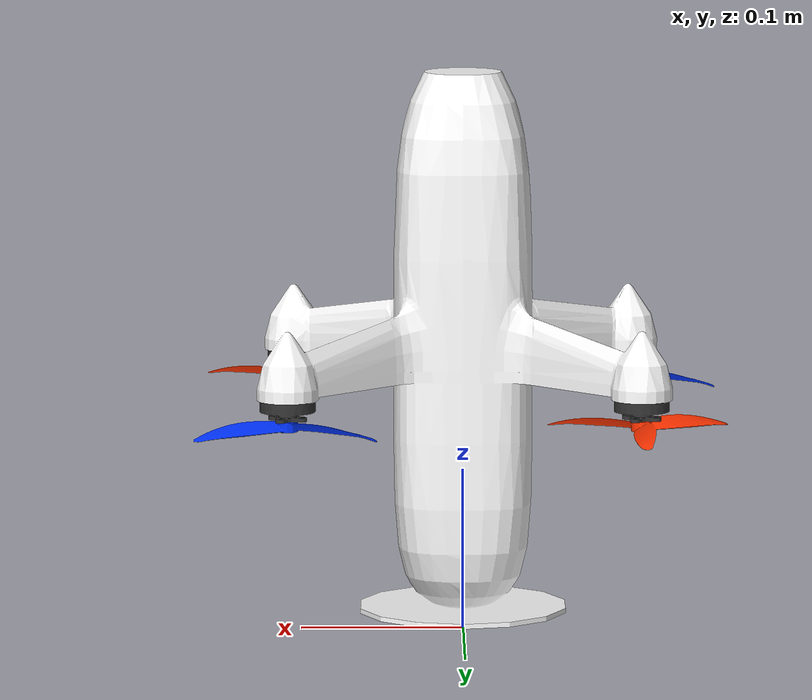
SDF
<?xml version="1.0" encoding="UTF-8"?>
<sdf version='1.9'>
  <model name='mosquito'>
    <pose>0 0 .167 0 0 0</pose>
    <self_collide>false</self_collide>
    <static>false</static>
    <link name="base_link">
      <inertial>
        <mass>1.0</mass>
        <inertia>
          <ixx>0.01166666666666667</ixx>
          <ixy>0</ixy>
          <ixz>0</ixz>
          <iyy>0.01166666666666667</iyy>
          <iyz>0</iyz>
          <izz>0.02000000000000001</izz>
        </inertia>
      </inertial>
      <gravity>true</gravity>
      <velocity_decay/>
      <visual name="base_link_visual">
        <pose>0 0 0 0 0 3.141592654</pose>
        <geometry>
          <mesh>
            <scale>0.001 0.001 0.001</scale>
            <uri>model://mosquito/meshes/body_x4.stl</uri>
          </mesh>
        </geometry>
        <material>
          <ambient>0.5 0.5 0.5 1</ambient>
          <diffuse>1.0 1.0 1.0 1</diffuse>
          <specular>1.0 1.0 0.5 1</specular>
        </material>
      </visual>
      <visual name="f90_motor_base_0">
        <pose>0.106 0.106 -0.0195 1.5708 0 -.45</pose>
        <geometry>
          <mesh>
            <scale>0.001 0.001 0.001</scale>
            <uri>model://mosquito/meshes/motor_f90.stl</uri>
          </mesh>
        </geometry>
        <material>
          <ambient>0.2 0.2 0.2 1</ambient>
          <diffuse>0.2 0.2 0.2 1</diffuse>
          <specular>0.5 0.5 0.5 1</specular>
        </material>
      </visual>
     <visual name="f90_motor_base_1">
        <pose>-0.106 0.106 -0.0195 1.5708 0 -.45</pose>
        <geometry>
          <mesh>
            <scale>0.001 0.001 0.001</scale>
            <uri>model://mosquito/meshes/motor_f90.stl</uri>
          </mesh>
        </geometry>
        <material>
          <ambient>0.2 0.2 0.2 1</ambient>
          <diffuse>0.2 0.2 0.2 1</diffuse>
          <specular>0.5 0.5 0.5 1</specular>
        </material>
      </visual>
      <visual name="f90_motor_base_2">
        <pose>0.106 -0.106 -0.0195 1.5708 0 -.45</pose>
        <geometry>
          <mesh>
            <scale>0.001 0.001 0.001</scale>
            <uri>model://mosquito/meshes/motor_f90.stl</uri>
          </mesh>
        </geometry>
        <material>
          <ambient>0.2 0.2 0.2 1</ambient>
          <diffuse>0.2 0.2 0.2 1</diffuse>
          <specular>0.5 0.5 0.5 1</specular>
        </material>
      </visual>
      <visual name="f90_motor_base_3">
        <pose>-0.106 -0.106 -0.0195 1.5708 0 -.45</pose>
        <geometry>
          <mesh>
            <scale>0.001 0.001 0.001</scale>
            <uri>model://mosquito/meshes/motor_f90.stl</uri>
          </mesh>
        </geometry>
        <material>
          <ambient>0.2 0.2 0.2 1</ambient>
          <diffuse>0.2 0.2 0.2 1</diffuse>
          <specular>0.5 0.5 0.5 1</specular>
        </material>
      </visual>
      <collision name="base_link_collision_0">
        <pose>0 0 0 0 0 0</pose>
        <geometry>
          <box>
            <size>0.086 0.086 0.336</size>
          </box>
        </geometry>
        <surface>
          <contact>
            <ode>
              <min_depth>0.001</min_depth>
              <max_vel>0</max_vel>
            </ode>
          </contact>
          <friction>
            <ode/>
          </friction>
        </surface>
      </collision>
      <collision name="base_link_collision_1">
        <pose>0.054 0.054 -0.0197 0 0 0.7853</pose>
        <geometry>
          <box>
            <size>0.011 0.002 0.005</size>
          </box>
        </geometry>
        <surface>
          <contact>
            <ode>
              <min_depth>0.001</min_depth>
              <max_vel>0</max_vel>
            </ode>
          </contact>
          <friction>
            <ode/>
          </friction>
        </surface>
      </collision>
      <collision name="base_link_collision_2">
        <pose>-0.054 0.054 -0.0197 0 0 -0.7853</pose>
        <geometry>
          <box>
            <size>0.011 0.002 0.05</size>
          </box>
        </geometry>
        <surface>
          <contact>
            <ode>
              <min_depth>0.001</min_depth>
              <max_vel>0</max_vel>
            </ode>
          </contact>
          <friction>
            <ode/>
          </friction>
        </surface>
      </collision>
      <collision name="base_link_collision_3">
        <pose>0.054 -0.054 -0.0197 0 0 -0.7853</pose>
        <geometry>
          <box>
            <size>0.011 0.002 0.05</size>
          </box>
        </geometry>
        <surface>
          <contact>
            <ode>
              <min_depth>0.001</min_depth>
              <max_vel>0</max_vel>
            </ode>
          </contact>
          <friction>
            <ode/>
          </friction>
        </surface>
      </collision>
      <collision name="base_link_collision_4">
        <pose>-0.054 -0.054 -0.0197 0 0 0.7853</pose>
        <geometry>
          <box>
            <size>0.011 0.002 0.05</size>
          </box>
        </geometry>
        <surface>
          <contact>
            <ode>
              <min_depth>0.001</min_depth>
              <max_vel>0</max_vel>
            </ode>
          </contact>
          <friction>
            <ode/>
          </friction>
        </surface>
      </collision>
      <sensor name="air_pressure_sensor" type="air_pressure">
        <always_on>1</always_on>
        <update_rate>50</update_rate>
        <air_pressure>
          <pressure>
            <noise type="gaussian">
              <mean>0</mean>
              <stddev>0.01</stddev>
            </noise>
          </pressure>
        </air_pressure>
      </sensor>
      <sensor name="imu_sensor" type="imu">
        <always_on>1</always_on>
        <update_rate>250</update_rate>
        <imu>
          <angular_velocity>
            <x>
              <noise type="gaussian">
                <mean>0</mean>
                <stddev>0.00018665</stddev>
                <dynamic_bias_stddev>3.8785e-05</dynamic_bias_stddev>
                <dynamic_bias_correlation_time>1000</dynamic_bias_correlation_time>
              </noise>
            </x>
            <y>
              <noise type="gaussian">
                <mean>0</mean>
                <stddev>0.00018665</stddev>
                <dynamic_bias_stddev>3.8785e-05</dynamic_bias_stddev>
                <dynamic_bias_correlation_time>1000</dynamic_bias_correlation_time>
              </noise>
            </y>
            <z>
              <noise type="gaussian">
                <mean>0</mean>
                <stddev>0.00018665</stddev>
                <dynamic_bias_stddev>3.8785e-05</dynamic_bias_stddev>
                <dynamic_bias_correlation_time>1000</dynamic_bias_correlation_time>
              </noise>
            </z>
          </angular_velocity>
          <linear_acceleration>
            <x>
              <noise type="gaussian">
                <mean>0</mean>
                <stddev>0.00186</stddev>
                <dynamic_bias_stddev>0.006</dynamic_bias_stddev>
                <dynamic_bias_correlation_time>300</dynamic_bias_correlation_time>
              </noise>
            </x>
            <y>
              <noise type="gaussian">
                <mean>0</mean>
                <stddev>0.00186</stddev>
                <dynamic_bias_stddev>0.006</dynamic_bias_stddev>
                <dynamic_bias_correlation_time>300</dynamic_bias_correlation_time>
              </noise>
            </y>
            <z>
              <noise type="gaussian">
                <mean>0</mean>
                <stddev>0.00186</stddev>
                <dynamic_bias_stddev>0.006</dynamic_bias_stddev>
                <dynamic_bias_correlation_time>300</dynamic_bias_correlation_time>
              </noise>
            </z>
          </linear_acceleration>
        </imu>
      </sensor>
      <sensor name="navsat_sensor" type="navsat">
        <always_on>1</always_on>
        <update_rate>30</update_rate>
      </sensor>
    </link>

    <link name="camera_link">
      <gravity>true</gravity>
      <self_collide>false</self_collide>
      <pose>0.0 0.0 0.1675 0 0 0</pose>
      <inertial>
        <mass>0.01</mass>
        <inertia>
          <ixx>2.3333e-06</ixx>
          <ixy>0</ixy>
          <ixz>0</ixz>
          <iyy>2.3333e-06</iyy>
          <iyz>0</iyz>
          <izz>2.0e-06</izz>
        </inertia>
      </inertial>
      <collision name="collision">
          <geometry>
            <cylinder>
              <radius>0.002</radius>
              <length>0.002</length>
            </cylinder>
          </geometry>
      </collision>
      <visual name="visual">
          <geometry>
            <cylinder>
              <radius>0.002</radius>
              <length>0.002</length>
            </cylinder>
          </geometry>
      </visual>
      <sensor name="camera" type="camera">
        <pose>0.0 0 0.1675 0 -1.5708 0</pose>
        <camera>
          <horizontal_fov>1.745</horizontal_fov>
          <image>
              <width>1280</width>
              <height>720</height>
          </image>
          <clip>
              <near>0.1</near>
              <far>1000</far>
          </clip>
        </camera>
        <always_on>1</always_on>
        <update_rate>30</update_rate>
        <visualize>true</visualize>
        <topic>camera</topic>
      </sensor>
    </link>

    <joint name="camera_joint" type="fixed">
      <parent>base_link</parent>
      <child>camera_link</child>
    </joint>

    <link name="rotor_0">
      <gravity>true</gravity>
      <self_collide>false</self_collide>
      <velocity_decay/>
      <pose>0.106 -0.106 -0.0198 0 0 0</pose>
      <inertial>
          <mass>0.016076923076923075</mass>
          <inertia>
            <ixx>3.8464910483993325e-07</ixx>
            <iyy>2.6115851691700804e-05</iyy>
            <izz>2.649858234714004e-05</izz>
          </inertia>
        </inertial>
      <visual name="rotor_0_visual">
        <pose>0 -0.08 0 -1.5708 0 0</pose>
        <geometry>
          <mesh>
            <scale>0.001 0.001 0.001</scale>
            <uri>model://mosquito/meshes/prop_5045_ccw.stl</uri>
          </mesh>
        </geometry>
        <material>
          <ambient>1.0 0.2 0.0 1</ambient>
          <diffuse>1.0 0.2 0.0 1</diffuse>
          <specular>1.0 1.0 1.0 1</specular>
          <emissive>0.5 0.5 0.1 1</emissive>
        </material>
      </visual>
      <collision name="rotor_0_collision">
        <pose>0 0 0 0 0 0 </pose>
        <geometry>
          <cylinder>
            <radius>0.013</radius>
            <length>0.002</length>
          </cylinder>
        </geometry>
        <surface>
          <contact>
            <ode>
              <min_depth>0.001</min_depth>
              <max_vel>0</max_vel>
            </ode>
          </contact>
          <friction>
            <ode/>
          </friction>
        </surface>
      </collision>
    </link>
    <joint name="rotor_0_joint" type="revolute">
      <parent>base_link</parent>
      <child>rotor_0</child>
      <axis>
        <xyz>0 0 1</xyz>
        <limit>
          <lower>-1e+16</lower>
          <upper>1e+16</upper>
        </limit>
        <dynamics>
          <spring_reference>0</spring_reference>
          <spring_stiffness>0</spring_stiffness>
        </dynamics>
      </axis>
    </joint>
    <link name="rotor_1">
      <gravity>true</gravity>
      <self_collide>false</self_collide>
      <velocity_decay/>
      <pose>-0.106 0.106 -0.0198 0 0 0</pose>
      <inertial>
        <mass>0.016076923076923075</mass>
        <inertia>
          <ixx>3.8464910483993325e-07</ixx>
          <iyy>2.6115851691700804e-05</iyy>
          <izz>2.649858234714004e-05</izz>
        </inertia>
      </inertial>
      <visual name="rotor_1_visual">
        <pose>0 -0.08 0 -1.5708 0 0</pose>
        <geometry>
          <mesh>
            <scale>0.001 0.001 0.001</scale>
            <uri>model://mosquito/meshes/prop_5045_ccw.stl</uri>
          </mesh>
        </geometry>
        <material>
          <ambient>1.0 0.2 0.0 1</ambient>
          <diffuse>1.0 0.2 0.0 1</diffuse>
          <specular>1.0 1.0 1.0 1</specular>
          <emissive>0.5 0.5 0.1 1</emissive>
        </material>
      </visual>
      <collision name="rotor_1_collision">
        <pose>0 0 0 0 0 0 </pose>
        <geometry>
          <cylinder>
            <radius>0.02</radius>
            <length>0.04</length>
          </cylinder>
        </geometry>
        <surface>
          <contact>
            <ode>
              <min_depth>0.001</min_depth>
              <max_vel>0</max_vel>
            </ode>
          </contact>
          <friction>
            <ode/>
          </friction>
        </surface>
      </collision>
    </link>
    <joint name="rotor_1_joint" type="revolute">
      <parent>base_link</parent>
      <child>rotor_1</child>
      <axis>
        <xyz>0 0 1</xyz>
        <limit>
          <lower>-1e+16</lower>
          <upper>1e+16</upper>
        </limit>
        <dynamics>
          <spring_reference>0</spring_reference>
          <spring_stiffness>0</spring_stiffness>
        </dynamics>
      </axis>
    </joint>
    <link name="rotor_2">
      <gravity>true</gravity>
      <self_collide>false</self_collide>
      <velocity_decay/>
      <pose>0.106 0.106 -0.0198 0 0 0</pose>
      <inertial>
          <mass>0.016076923076923075</mass>
          <inertia>
            <ixx>3.8464910483993325e-07</ixx>
            <iyy>2.6115851691700804e-05</iyy>
            <izz>2.649858234714004e-05</izz>
          </inertia>
        </inertial>
      <visual name="rotor_2_visual">
        <pose>0 0 0 -1.5708 0 0</pose>
        <geometry>
          <mesh>
            <scale>0.001 0.001 0.001</scale>
            <uri>model://mosquito/meshes/prop_5045_cw.stl</uri>
          </mesh>
        </geometry>
        <material>
          <ambient>0.0 0.2 1.0 1</ambient>
          <diffuse>0.0 0.2 1.0 1</diffuse>
          <specular>1.0 1.0 1.0 1</specular>
          <emissive>0.5 0.5 0.1 1</emissive>
        </material>
      </visual>
      <collision name="rotor_2_collision">
        <pose>0 0 0 0 0 0 </pose>
        <geometry>
          <cylinder>
            <radius>0.02</radius>
            <length>0.04</length>
          </cylinder>
        </geometry>
        <surface>
          <contact>
            <ode>
              <min_depth>0.001</min_depth>
              <max_vel>0</max_vel>
            </ode>
          </contact>
          <friction>
            <ode/>
          </friction>
        </surface>
      </collision>
    </link>
    <joint name="rotor_2_joint" type="revolute">
      <parent>base_link</parent>
      <child>rotor_2</child>
      <axis>
        <xyz>0 0 1</xyz>
        <limit>
          <lower>-1e+16</lower>
          <upper>1e+16</upper>
        </limit>
        <dynamics>
          <spring_reference>0</spring_reference>
          <spring_stiffness>0</spring_stiffness>
        </dynamics>
      </axis>
    </joint>
    <link name="rotor_3">
      <gravity>true</gravity>
      <self_collide>false</self_collide>
      <velocity_decay/>
      <pose>-0.106 -0.106 -0.0198 0 0 0</pose>
      <inertial>
          <mass>0.016076923076923075</mass>
          <inertia>
            <ixx>3.8464910483993325e-07</ixx>
            <iyy>2.6115851691700804e-05</iyy>
            <izz>2.649858234714004e-05</izz>
          </inertia>
        </inertial>
      <visual name="rotor_3_visual">
        <pose>0 0 0 -1.5708 0 0</pose>
        <geometry>
          <mesh>
            <scale>0.001 0.001 0.001</scale>
            <uri>model://mosquito/meshes/prop_5045_cw.stl</uri>
          </mesh>
        </geometry>
        <material>
          <ambient>0.0 0.2 1.0 1</ambient>
          <diffuse>0.0 0.2 1.0 1</diffuse>
          <specular>1.0 1.0 1.0 1</specular>
          <emissive>0.5 0.5 0.1 1</emissive>
        </material>
      </visual>
      <collision name="rotor_3_collision">
        <pose>0 0 0 0 0 0 </pose>
        <geometry>
          <cylinder>
            <radius>0.02</radius>
            <length>0.04</length>
          </cylinder>
        </geometry>
        <surface>
          <contact>
            <ode>
              <min_depth>0.001</min_depth>
              <max_vel>0</max_vel>
            </ode>
          </contact>
          <friction>
            <ode/>
          </friction>
        </surface>
      </collision>
    </link>
    <joint name="rotor_3_joint" type="revolute">
      <parent>base_link</parent>
      <child>rotor_3</child>
      <axis>
        <xyz>0 0 1</xyz>
        <limit>
          <lower>-1e+16</lower>
          <upper>1e+16</upper>
        </limit>
        <dynamics>
          <spring_reference>0</spring_reference>
          <spring_stiffness>0</spring_stiffness>
        </dynamics>
      </axis>
    </joint>

    <plugin filename="gz-sim-multicopter-motor-model-system" name="gz::sim::systems::MulticopterMotorModel">
      <jointName>rotor_0_joint</jointName>
      <linkName>rotor_0</linkName>
      <turningDirection>ccw</turningDirection>
      <timeConstantUp>0.0125</timeConstantUp> <!-- 加速更快 -->
      <timeConstantDown>0.025</timeConstantDown>
      <maxRotVelocity>1000.0</maxRotVelocity> <!-- 增加最大转速 -->
      <motorConstant>1.24858e-05</motorConstant> <!-- 增加升力系数 -->
      <momentConstant>0.016</momentConstant>
      <commandSubTopic>command/motor_speed</commandSubTopic>
      <motorNumber>0</motorNumber>
      <rotorDragCoefficient>8.06428e-05</rotorDragCoefficient>
      <rollingMomentCoefficient>1e-06</rollingMomentCoefficient>
      <rotorVelocitySlowdownSim>10</rotorVelocitySlowdownSim>
      <motorType>velocity</motorType>
    </plugin>
    <plugin filename="gz-sim-multicopter-motor-model-system" name="gz::sim::systems::MulticopterMotorModel">
      <jointName>rotor_1_joint</jointName>
      <linkName>rotor_1</linkName>
      <turningDirection>ccw</turningDirection>
      <timeConstantUp>0.0125</timeConstantUp>
      <timeConstantDown>0.025</timeConstantDown>
      <maxRotVelocity>1000.0</maxRotVelocity>
      <motorConstant>1.24858e-05</motorConstant>
      <momentConstant>0.016</momentConstant>
      <commandSubTopic>command/motor_speed</commandSubTopic>
      <motorNumber>1</motorNumber>
      <rotorDragCoefficient>8.06428e-05</rotorDragCoefficient>
      <rollingMomentCoefficient>1e-06</rollingMomentCoefficient>
      <rotorVelocitySlowdownSim>10</rotorVelocitySlowdownSim>
      <motorType>velocity</motorType>
    </plugin>
    <plugin filename="gz-sim-multicopter-motor-model-system" name="gz::sim::systems::MulticopterMotorModel">
      <jointName>rotor_2_joint</jointName>
      <linkName>rotor_2</linkName>
      <turningDirection>cw</turningDirection>
      <timeConstantUp>0.0125</timeConstantUp>
      <timeConstantDown>0.025</timeConstantDown>
      <maxRotVelocity>1000.0</maxRotVelocity>
      <motorConstant>1.24858e-05</motorConstant>
      <momentConstant>0.016</momentConstant>
      <commandSubTopic>command/motor_speed</commandSubTopic>
      <motorNumber>2</motorNumber>
      <rotorDragCoefficient>8.06428e-05</rotorDragCoefficient>
      <rollingMomentCoefficient>1e-06</rollingMomentCoefficient>
      <rotorVelocitySlowdownSim>10</rotorVelocitySlowdownSim>
      <motorType>velocity</motorType>
    </plugin>
    <plugin filename="gz-sim-multicopter-motor-model-system" name="gz::sim::systems::MulticopterMotorModel">
      <jointName>rotor_3_joint</jointName>
      <linkName>rotor_3</linkName>
      <turningDirection>cw</turningDirection>
      <timeConstantUp>0.0125</timeConstantUp>
      <timeConstantDown>0.025</timeConstantDown>
      <maxRotVelocity>1000.0</maxRotVelocity>
      <motorConstant>1.24858e-05</motorConstant>
      <momentConstant>0.016</momentConstant>
      <commandSubTopic>command/motor_speed</commandSubTopic>
      <motorNumber>3</motorNumber>
      <rotorDragCoefficient>8.06428e-05</rotorDragCoefficient>
      <rollingMomentCoefficient>1e-06</rollingMomentCoefficient>
      <rotorVelocitySlowdownSim>10</rotorVelocitySlowdownSim>
      <motorType>velocity</motorType>
    </plugin>
  </model>
</sdf>
